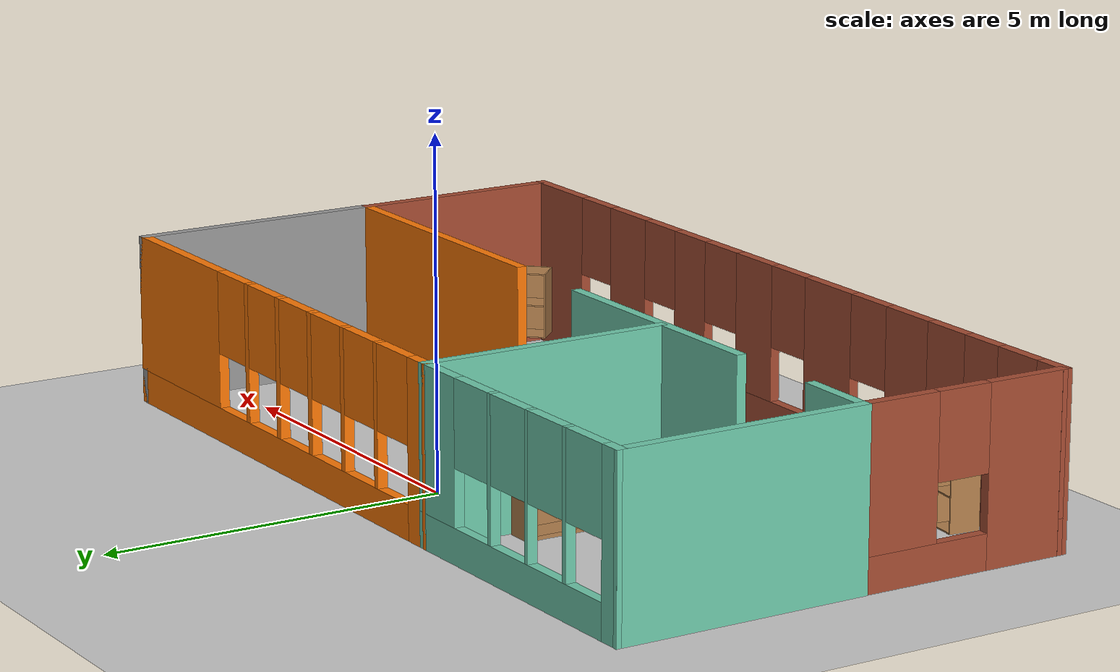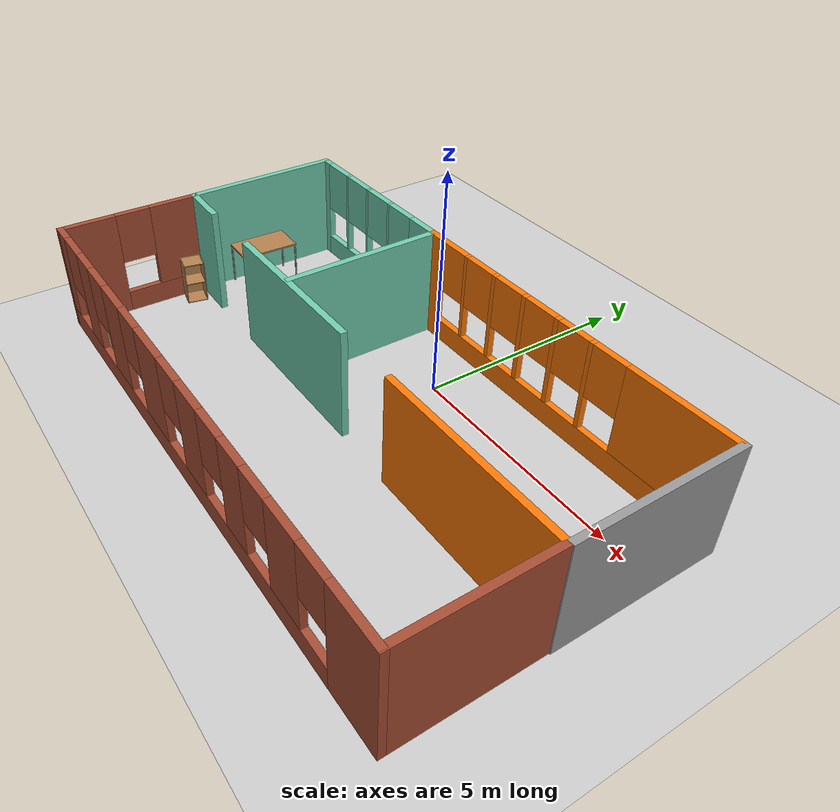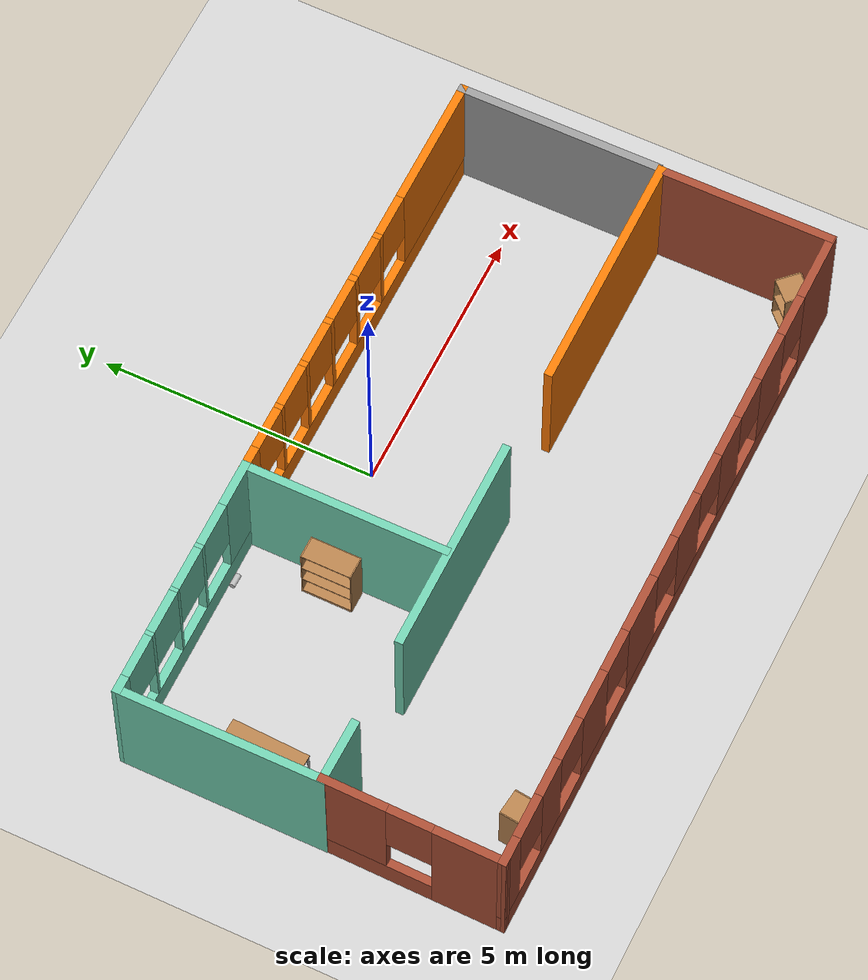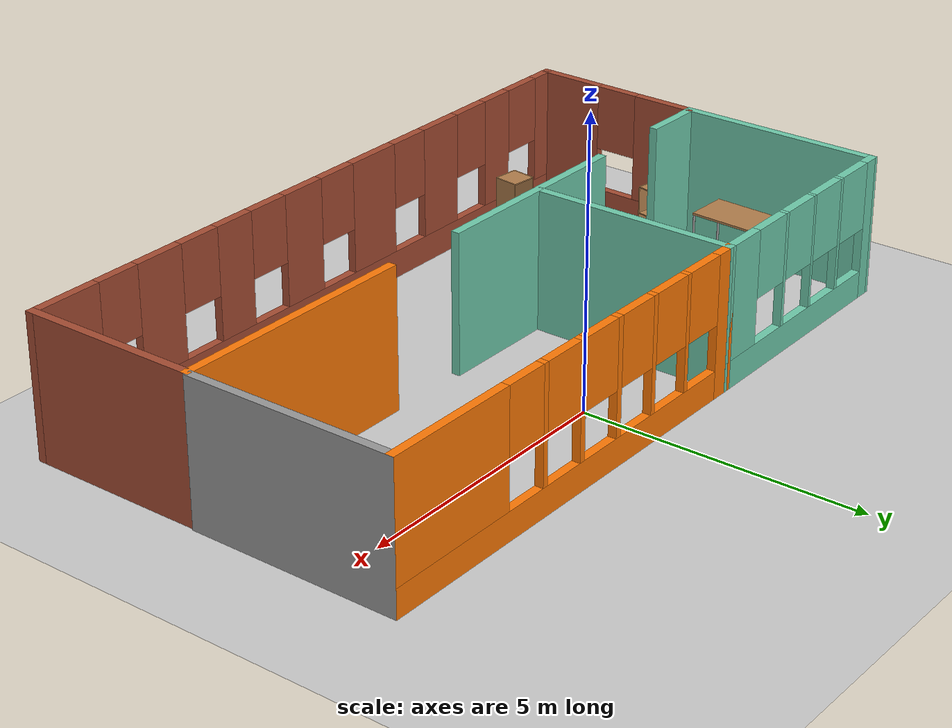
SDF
<sdf version="1.6">
 <world name="default">
  <light name="sun" type="directional">
   <pose>0 0 15 0 -0 0</pose>
   <diffuse>1 1 1 1</diffuse>
   <specular>0.1 0.1 0.1 1</specular>
   <attenuation>
    <range>1000</range>
    <constant>0.9</constant>
    <linear>0.01</linear>
    <quadratic>0.001</quadratic>
   </attenuation>
   <direction>-0.5 0.5 -1</direction>
  </light>
  <model name="ground_plane">
   <static>1</static>
   <link name="link">
    <collision name="collision">
     <geometry><plane><normal>0 0 1</normal><size>100 100</size></plane></geometry>
     <surface><friction><ode><mu>100</mu><mu2>50</mu2></ode></friction></surface>
    </collision>
    <visual name="visual">
     <transparency>1</transparency>
     <cast_shadows>0</cast_shadows>
     <geometry><plane><normal>0 0 1</normal><size>100 100</size></plane></geometry>
     <material>
      <script><uri>file://media/materials/scripts/gazebo.material</uri><name>Gazebo/Grey</name></script>
     </material>
    </visual>
   </link>
  </model>
  <gravity>0 0 -9.8</gravity>
  <magnetic_field>6e-06 2.3e-05 -4.2e-05</magnetic_field>
  <atmosphere type="adiabatic"/>
  <physics name="default_physics" default="0" type="ode">
   <max_step_size>0.001</max_step_size>
   <real_time_factor>1</real_time_factor>
   <real_time_update_rate>1000</real_time_update_rate>
  </physics>
  <scene><ambient>0.4 0.4 0.4 1</ambient><background>0.7 0.7 0.7 1</background><shadows>1</shadows></scene>
  <spherical_coordinates>
   <surface_model>EARTH_WGS84</surface_model>
   <latitude_deg>0</latitude_deg>
   <longitude_deg>0</longitude_deg>
   <elevation>0</elevation>
   <heading_deg>0</heading_deg>
  </spherical_coordinates>
  <model name="Custom_Gazebo_World">
   <pose>-0.16169 -2.10044 0 0 -0 0</pose>
   <link name="Wall_10">
    <pose>2.26288 3.39401 0 0 -0 0</pose>
    <visual name="Wall_10_Visual_0">
     <pose>-3.90026 0 1.25 0 -0 0</pose>
     <geometry><box><size>0.449477 0.15 2.5</size></box></geometry>
     <material>
      <script><uri>file://media/materials/scripts/gazebo.material</uri><name>Gazebo/Grey</name></script>
      <ambient>0.996078 0.47451 0.0196078 1</ambient>
     </material>
    </visual>
    <collision name="Wall_10_Collision_0">
     <geometry><box><size>0.449477 0.15 2.5</size></box></geometry>
     <pose>-3.90026 0 1.25 0 -0 0</pose>
    </collision>
    <visual name="Wall_10_Visual_1">
     <pose>0.224738 0 0.25 0 -0 0</pose>
     <geometry><box><size>7.80052 0.15 0.5</size></box></geometry>
     <material>
      <script><uri>file://media/materials/scripts/gazebo.material</uri><name>Gazebo/Grey</name></script>
      <ambient>0.996078 0.47451 0.0196078 1</ambient>
     </material>
    </visual>
    <collision name="Wall_10_Collision_1">
     <geometry><box><size>7.80052 0.15 0.5</size></box></geometry>
     <pose>0.224738 0 0.25 0 -0 0</pose>
    </collision>
    <visual name="Wall_10_Visual_2">
     <pose>-2.83026 0 1.5 0 -0 0</pose>
     <geometry><box><size>0.090528 0.15 2</size></box></geometry>
     <material>
      <script><uri>file://media/materials/scripts/gazebo.material</uri><name>Gazebo/Grey</name></script>
      <ambient>0.996078 0.47451 0.0196078 1</ambient>
     </material>
    </visual>
    <collision name="Wall_10_Collision_2">
     <geometry><box><size>0.090528 0.15 2</size></box></geometry>
     <pose>-2.83026 0 1.5 0 -0 0</pose>
    </collision>
    <visual name="Wall_10_Visual_3">
     <pose>-1.93395 0 1.5 0 -0 0</pose>
     <geometry><box><size>0.102094 0.15 2</size></box></geometry>
     <material>
      <script><uri>file://media/materials/scripts/gazebo.material</uri><name>Gazebo/Grey</name></script>
      <ambient>0.996078 0.47451 0.0196078 1</ambient>
     </material>
    </visual>
    <collision name="Wall_10_Collision_3">
     <geometry><box><size>0.102094 0.15 2</size></box></geometry>
     <pose>-1.93395 0 1.5 0 -0 0</pose>
    </collision>
    <visual name="Wall_10_Visual_4">
     <pose>-1.02607 0 1.5 0 -0 0</pose>
     <geometry><box><size>0.113659 0.15 2</size></box></geometry>
     <material>
      <script><uri>file://media/materials/scripts/gazebo.material</uri><name>Gazebo/Grey</name></script>
      <ambient>0.996078 0.47451 0.0196078 1</ambient>
     </material>
    </visual>
    <collision name="Wall_10_Collision_4">
     <geometry><box><size>0.113659 0.15 2</size></box></geometry>
     <pose>-1.02607 0 1.5 0 -0 0</pose>
    </collision>
    <visual name="Wall_10_Visual_5">
     <pose>-0.112412 0 1.5 0 -0 0</pose>
     <geometry><box><size>0.113659 0.15 2</size></box></geometry>
     <material>
      <script><uri>file://media/materials/scripts/gazebo.material</uri><name>Gazebo/Grey</name></script>
      <ambient>0.996078 0.47451 0.0196078 1</ambient>
     </material>
    </visual>
    <collision name="Wall_10_Collision_5">
     <geometry><box><size>0.113659 0.15 2</size></box></geometry>
     <pose>-0.112412 0 1.5 0 -0 0</pose>
    </collision>
    <visual name="Wall_10_Visual_6">
     <pose>0.795464 0 1.5 0 -0 0</pose>
     <geometry><box><size>0.102094 0.15 2</size></box></geometry>
     <material>
      <script><uri>file://media/materials/scripts/gazebo.material</uri><name>Gazebo/Grey</name></script>
      <ambient>0.996078 0.47451 0.0196078 1</ambient>
     </material>
    </visual>
    <collision name="Wall_10_Collision_6">
     <geometry><box><size>0.102094 0.15 2</size></box></geometry>
     <pose>0.795464 0 1.5 0 -0 0</pose>
    </collision>
    <visual name="Wall_10_Visual_7">
     <pose>2.88576 0 1.5 0 -0 0</pose>
     <geometry><box><size>2.47849 0.15 2</size></box></geometry>
     <material>
      <script><uri>file://media/materials/scripts/gazebo.material</uri><name>Gazebo/Grey</name></script>
      <ambient>0.996078 0.47451 0.0196078 1</ambient>
     </material>
    </visual>
    <collision name="Wall_10_Collision_7">
     <geometry><box><size>2.47849 0.15 2</size></box></geometry>
     <pose>2.88576 0 1.5 0 -0 0</pose>
    </collision>
    <visual name="Wall_10_Visual_8">
     <pose>-3.27552 0 1.9 0 -0 0</pose>
     <geometry><box><size>0.8 0.15 1.2</size></box></geometry>
     <material>
      <script><uri>file://media/materials/scripts/gazebo.material</uri><name>Gazebo/Grey</name></script>
      <ambient>0.996078 0.47451 0.0196078 1</ambient>
     </material>
    </visual>
    <collision name="Wall_10_Collision_8">
     <geometry><box><size>0.8 0.15 1.2</size></box></geometry>
     <pose>-3.27552 0 1.9 0 -0 0</pose>
    </collision>
    <visual name="Wall_10_Visual_9">
     <pose>-2.38499 0 1.9 0 -0 0</pose>
     <geometry><box><size>0.8 0.15 1.2</size></box></geometry>
     <material>
      <script><uri>file://media/materials/scripts/gazebo.material</uri><name>Gazebo/Grey</name></script>
      <ambient>0.996078 0.47451 0.0196078 1</ambient>
     </material>
    </visual>
    <collision name="Wall_10_Collision_9">
     <geometry><box><size>0.8 0.15 1.2</size></box></geometry>
     <pose>-2.38499 0 1.9 0 -0 0</pose>
    </collision>
    <visual name="Wall_10_Visual_10">
     <pose>-1.4829 0 1.9 0 -0 0</pose>
     <geometry><box><size>0.8 0.15 1.2</size></box></geometry>
     <material>
      <script><uri>file://media/materials/scripts/gazebo.material</uri><name>Gazebo/Grey</name></script>
      <ambient>0.996078 0.47451 0.0196078 1</ambient>
     </material>
    </visual>
    <collision name="Wall_10_Collision_10">
     <geometry><box><size>0.8 0.15 1.2</size></box></geometry>
     <pose>-1.4829 0 1.9 0 -0 0</pose>
    </collision>
    <visual name="Wall_10_Visual_11">
     <pose>-0.569242 0 1.9 0 -0 0</pose>
     <geometry><box><size>0.8 0.15 1.2</size></box></geometry>
     <material>
      <script><uri>file://media/materials/scripts/gazebo.material</uri><name>Gazebo/Grey</name></script>
      <ambient>0.996078 0.47451 0.0196078 1</ambient>
     </material>
    </visual>
    <collision name="Wall_10_Collision_11">
     <geometry><box><size>0.8 0.15 1.2</size></box></geometry>
     <pose>-0.569242 0 1.9 0 -0 0</pose>
    </collision>
    <visual name="Wall_10_Visual_12">
     <pose>0.344417 0 1.9 0 -0 0</pose>
     <geometry><box><size>0.8 0.15 1.2</size></box></geometry>
     <material>
      <script><uri>file://media/materials/scripts/gazebo.material</uri><name>Gazebo/Grey</name></script>
      <ambient>0.996078 0.47451 0.0196078 1</ambient>
     </material>
    </visual>
    <collision name="Wall_10_Collision_12">
     <geometry><box><size>0.8 0.15 1.2</size></box></geometry>
     <pose>0.344417 0 1.9 0 -0 0</pose>
    </collision>
    <visual name="Wall_10_Visual_13">
     <pose>1.24651 0 1.9 0 -0 0</pose>
     <geometry><box><size>0.8 0.15 1.2</size></box></geometry>
     <material>
      <script><uri>file://media/materials/scripts/gazebo.material</uri><name>Gazebo/Grey</name></script>
      <ambient>0.996078 0.47451 0.0196078 1</ambient>
     </material>
    </visual>
    <collision name="Wall_10_Collision_13">
     <geometry><box><size>0.8 0.15 1.2</size></box></geometry>
     <pose>1.24651 0 1.9 0 -0 0</pose>
    </collision>
   </link>
   <link name="Wall_11">
    <collision name="Wall_11_Collision">
     <geometry><box><size>3.75 0.15 2.5</size></box></geometry>
     <pose>0 0 1.25 0 -0 0</pose>
    </collision>
    <visual name="Wall_11_Visual">
     <pose>0 0 1.25 0 -0 0</pose>
     <geometry><box><size>3.75 0.15 2.5</size></box></geometry>
     <material>
      <script><uri>file://media/materials/scripts/gazebo.material</uri><name>Gazebo/Grey</name></script>
      <ambient>1 1 1 1</ambient>
     </material>
    </visual>
    <pose>6.31288 1.59401 0 0 0 -1.5708</pose>
   </link>
   <link name="Wall_14">
    <collision name="Wall_14_Collision">
     <geometry><box><size>4.5 0.15 2.5</size></box></geometry>
     <pose>0 0 1.25 0 -0 0</pose>
    </collision>
    <visual name="Wall_14_Visual">
     <pose>0 0 1.25 0 -0 0</pose>
     <geometry><box><size>4.5 0.15 2.5</size></box></geometry>
     <material>
      <script><uri>file://media/materials/scripts/gazebo.material</uri><name>Gazebo/Grey</name></script>
      <ambient>0.996078 0.47451 0.0196078 1</ambient>
     </material>
    </visual>
    <pose>4.11326 -0.293438 0 0 -0 0</pose>
   </link>
   <link name="Wall_16">
    <collision name="Wall_16_Collision">
     <geometry><box><size>3.25 0.15 2.5</size></box></geometry>
     <pose>0 0 1.25 0 -0 0</pose>
    </collision>
    <visual name="Wall_16_Visual">
     <pose>0 0 1.25 0 -0 0</pose>
     <geometry><box><size>3.25 0.15 2.5</size></box></geometry>
     <material>
      <script><uri>file://media/materials/scripts/gazebo.material</uri><name>Gazebo/Bricks</name></script>
      <ambient>0.996078 0.47451 0.0196078 1</ambient>
     </material>
    </visual>
    <pose>6.28826 -1.84344 0 0 0 -1.5708</pose>
   </link>
   <link name="Wall_17">
    <pose>-0.011741 -3.39344 0 0 -0 3.14159</pose>
    <visual name="Wall_17_Visual_0">
     <pose>-5.71433 0 1.25 0 -0 0</pose>
     <geometry><box><size>1.32135 0.15 2.5</size></box></geometry>
     <material>
      <script><uri>file://media/materials/scripts/gazebo.material</uri><name>Gazebo/Bricks</name></script>
      <ambient>0.996078 0.47451 0.0196078 1</ambient>
     </material>
    </visual>
    <collision name="Wall_17_Collision_0">
     <geometry><box><size>1.32135 0.15 2.5</size></box></geometry>
     <pose>-5.71433 0 1.25 0 -0 0</pose>
    </collision>
    <visual name="Wall_17_Visual_1">
     <pose>0.660673 0 0.25 0 -0 0</pose>
     <geometry><box><size>11.4287 0.15 0.5</size></box></geometry>
     <material>
      <script><uri>file://media/materials/scripts/gazebo.material</uri><name>Gazebo/Bricks</name></script>
      <ambient>0.996078 0.47451 0.0196078 1</ambient>
     </material>
    </visual>
    <collision name="Wall_17_Collision_1">
     <geometry><box><size>11.4287 0.15 0.5</size></box></geometry>
     <pose>0.660673 0 0.25 0 -0 0</pose>
    </collision>
    <visual name="Wall_17_Visual_2">
     <pose>-3.78386 0 1.5 0 -0 0</pose>
     <geometry><box><size>0.93959 0.15 2</size></box></geometry>
     <material>
      <script><uri>file://media/materials/scripts/gazebo.material</uri><name>Gazebo/Bricks</name></script>
      <ambient>0.996078 0.47451 0.0196078 1</ambient>
     </material>
    </visual>
    <collision name="Wall_17_Collision_2">
     <geometry><box><size>0.93959 0.15 2</size></box></geometry>
     <pose>-3.78386 0 1.5 0 -0 0</pose>
    </collision>
    <visual name="Wall_17_Visual_3">
     <pose>-2.12518 0 1.5 0 -0 0</pose>
     <geometry><box><size>0.777768 0.15 2</size></box></geometry>
     <material>
      <script><uri>file://media/materials/scripts/gazebo.material</uri><name>Gazebo/Bricks</name></script>
      <ambient>0.996078 0.47451 0.0196078 1</ambient>
     </material>
    </visual>
    <collision name="Wall_17_Collision_3">
     <geometry><box><size>0.777768 0.15 2</size></box></geometry>
     <pose>-2.12518 0 1.5 0 -0 0</pose>
    </collision>
    <visual name="Wall_17_Visual_4">
     <pose>-0.496843 0 1.5 0 -0 0</pose>
     <geometry><box><size>0.878907 0.15 2</size></box></geometry>
     <material>
      <script><uri>file://media/materials/scripts/gazebo.material</uri><name>Gazebo/Bricks</name></script>
      <ambient>0.996078 0.47451 0.0196078 1</ambient>
     </material>
    </visual>
    <collision name="Wall_17_Collision_4">
     <geometry><box><size>0.878907 0.15 2</size></box></geometry>
     <pose>-0.496843 0 1.5 0 -0 0</pose>
    </collision>
    <visual name="Wall_17_Visual_5">
     <pose>1.2832 0 1.5 0 -0 0</pose>
     <geometry><box><size>1.08118 0.15 2</size></box></geometry>
     <material>
      <script><uri>file://media/materials/scripts/gazebo.material</uri><name>Gazebo/Bricks</name></script>
      <ambient>0.996078 0.47451 0.0196078 1</ambient>
     </material>
    </visual>
    <collision name="Wall_17_Collision_5">
     <geometry><box><size>1.08118 0.15 2</size></box></geometry>
     <pose>1.2832 0 1.5 0 -0 0</pose>
    </collision>
    <visual name="Wall_17_Visual_6">
     <pose>3.08347 0 1.5 0 -0 0</pose>
     <geometry><box><size>0.919362 0.15 2</size></box></geometry>
     <material>
      <script><uri>file://media/materials/scripts/gazebo.material</uri><name>Gazebo/Bricks</name></script>
      <ambient>0.996078 0.47451 0.0196078 1</ambient>
     </material>
    </visual>
    <collision name="Wall_17_Collision_6">
     <geometry><box><size>0.919362 0.15 2</size></box></geometry>
     <pose>3.08347 0 1.5 0 -0 0</pose>
    </collision>
    <visual name="Wall_17_Visual_7">
     <pose>4.69158 0 1.5 0 -0 0</pose>
     <geometry><box><size>0.696857 0.15 2</size></box></geometry>
     <material>
      <script><uri>file://media/materials/scripts/gazebo.material</uri><name>Gazebo/Bricks</name></script>
      <ambient>0.996078 0.47451 0.0196078 1</ambient>
     </material>
    </visual>
    <collision name="Wall_17_Collision_7">
     <geometry><box><size>0.696857 0.15 2</size></box></geometry>
     <pose>4.69158 0 1.5 0 -0 0</pose>
    </collision>
    <visual name="Wall_17_Visual_8">
     <pose>6.10751 0 1.5 0 -0 0</pose>
     <geometry><box><size>0.534987 0.15 2</size></box></geometry>
     <material>
      <script><uri>file://media/materials/scripts/gazebo.material</uri><name>Gazebo/Bricks</name></script>
      <ambient>0.996078 0.47451 0.0196078 1</ambient>
     </material>
    </visual>
    <collision name="Wall_17_Collision_8">
     <geometry><box><size>0.534987 0.15 2</size></box></geometry>
     <pose>6.10751 0 1.5 0 -0 0</pose>
    </collision>
    <visual name="Wall_17_Visual_9">
     <pose>-4.65365 0 1.9 0 -0 0</pose>
     <geometry><box><size>0.8 0.15 1.2</size></box></geometry>
     <material>
      <script><uri>file://media/materials/scripts/gazebo.material</uri><name>Gazebo/Bricks</name></script>
      <ambient>0.996078 0.47451 0.0196078 1</ambient>
     </material>
    </visual>
    <collision name="Wall_17_Collision_9">
     <geometry><box><size>0.8 0.15 1.2</size></box></geometry>
     <pose>-4.65365 0 1.9 0 -0 0</pose>
    </collision>
    <visual name="Wall_17_Visual_10">
     <pose>-2.91406 0 1.9 0 -0 0</pose>
     <geometry><box><size>0.8 0.15 1.2</size></box></geometry>
     <material>
      <script><uri>file://media/materials/scripts/gazebo.material</uri><name>Gazebo/Bricks</name></script>
      <ambient>0.996078 0.47451 0.0196078 1</ambient>
     </material>
    </visual>
    <collision name="Wall_17_Collision_10">
     <geometry><box><size>0.8 0.15 1.2</size></box></geometry>
     <pose>-2.91406 0 1.9 0 -0 0</pose>
    </collision>
    <visual name="Wall_17_Visual_11">
     <pose>-1.3363 0 1.9 0 -0 0</pose>
     <geometry><box><size>0.8 0.15 1.2</size></box></geometry>
     <material>
      <script><uri>file://media/materials/scripts/gazebo.material</uri><name>Gazebo/Bricks</name></script>
      <ambient>0.996078 0.47451 0.0196078 1</ambient>
     </material>
    </visual>
    <collision name="Wall_17_Collision_11">
     <geometry><box><size>0.8 0.15 1.2</size></box></geometry>
     <pose>-1.3363 0 1.9 0 -0 0</pose>
    </collision>
    <visual name="Wall_17_Visual_12">
     <pose>0.34261 0 1.9 0 -0 0</pose>
     <geometry><box><size>0.8 0.15 1.2</size></box></geometry>
     <material>
      <script><uri>file://media/materials/scripts/gazebo.material</uri><name>Gazebo/Bricks</name></script>
      <ambient>0.996078 0.47451 0.0196078 1</ambient>
     </material>
    </visual>
    <collision name="Wall_17_Collision_12">
     <geometry><box><size>0.8 0.15 1.2</size></box></geometry>
     <pose>0.34261 0 1.9 0 -0 0</pose>
    </collision>
    <visual name="Wall_17_Visual_13">
     <pose>2.22379 0 1.9 0 -0 0</pose>
     <geometry><box><size>0.8 0.15 1.2</size></box></geometry>
     <material>
      <script><uri>file://media/materials/scripts/gazebo.material</uri><name>Gazebo/Bricks</name></script>
      <ambient>0.996078 0.47451 0.0196078 1</ambient>
     </material>
    </visual>
    <collision name="Wall_17_Collision_13">
     <geometry><box><size>0.8 0.15 1.2</size></box></geometry>
     <pose>2.22379 0 1.9 0 -0 0</pose>
    </collision>
    <visual name="Wall_17_Visual_14">
     <pose>3.94316 0 1.9 0 -0 0</pose>
     <geometry><box><size>0.8 0.15 1.2</size></box></geometry>
     <material>
      <script><uri>file://media/materials/scripts/gazebo.material</uri><name>Gazebo/Bricks</name></script>
      <ambient>0.996078 0.47451 0.0196078 1</ambient>
     </material>
    </visual>
    <collision name="Wall_17_Collision_14">
     <geometry><box><size>0.8 0.15 1.2</size></box></geometry>
     <pose>3.94316 0 1.9 0 -0 0</pose>
    </collision>
    <visual name="Wall_17_Visual_15">
     <pose>5.44001 0 1.9 0 -0 0</pose>
     <geometry><box><size>0.8 0.15 1.2</size></box></geometry>
     <material>
      <script><uri>file://media/materials/scripts/gazebo.material</uri><name>Gazebo/Bricks</name></script>
      <ambient>0.996078 0.47451 0.0196078 1</ambient>
     </material>
    </visual>
    <collision name="Wall_17_Collision_15">
     <geometry><box><size>0.8 0.15 1.2</size></box></geometry>
     <pose>5.44001 0 1.9 0 -0 0</pose>
    </collision>
   </link>
   <link name="Wall_18">
    <pose>-6.28769 -1.81656 0 0 -0 1.55555</pose>
    <visual name="Wall_18_Visual_0">
     <pose>-1.00436 0 1.25 0 -0 0</pose>
     <geometry><box><size>1.29542 0.15 2.5</size></box></geometry>
     <material>
      <script><uri>file://media/materials/scripts/gazebo.material</uri><name>Gazebo/Bricks</name></script>
      <ambient>0.435294 0.796078 0.67451 1</ambient>
     </material>
    </visual>
    <collision name="Wall_18_Collision_0">
     <geometry><box><size>1.29542 0.15 2.5</size></box></geometry>
     <pose>-1.00436 0 1.25 0 -0 0</pose>
    </collision>
    <visual name="Wall_18_Visual_1">
     <pose>0.647708 0 0.25 0 -0 0</pose>
     <geometry><box><size>2.00871 0.15 0.5</size></box></geometry>
     <material>
      <script><uri>file://media/materials/scripts/gazebo.material</uri><name>Gazebo/Bricks</name></script>
      <ambient>0.435294 0.796078 0.67451 1</ambient>
     </material>
    </visual>
    <collision name="Wall_18_Collision_1">
     <geometry><box><size>2.00871 0.15 0.5</size></box></geometry>
     <pose>0.647708 0 0.25 0 -0 0</pose>
    </collision>
    <visual name="Wall_18_Visual_2">
     <pose>1.04771 0 1.5 0 -0 0</pose>
     <geometry><box><size>1.20871 0.15 2</size></box></geometry>
     <material>
      <script><uri>file://media/materials/scripts/gazebo.material</uri><name>Gazebo/Bricks</name></script>
      <ambient>0.435294 0.796078 0.67451 1</ambient>
     </material>
    </visual>
    <collision name="Wall_18_Collision_2">
     <geometry><box><size>1.20871 0.15 2</size></box></geometry>
     <pose>1.04771 0 1.5 0 -0 0</pose>
    </collision>
    <visual name="Wall_18_Visual_3">
     <pose>0.043352 0 1.9 0 -0 0</pose>
     <geometry><box><size>0.8 0.15 1.2</size></box></geometry>
     <material>
      <script><uri>file://media/materials/scripts/gazebo.material</uri><name>Gazebo/Bricks</name></script>
      <ambient>0.435294 0.796078 0.67451 1</ambient>
     </material>
    </visual>
    <collision name="Wall_18_Collision_3">
     <geometry><box><size>0.8 0.15 1.2</size></box></geometry>
     <pose>0.043352 0 1.9 0 -0 0</pose>
    </collision>
   </link>
   <link name="Wall_22">
    <pose>-4.03041 3.37717 0 0 -0 0.007508</pose>
    <visual name="Wall_22_Visual_0">
     <pose>-2.15142 0 1.25 0 -0 0</pose>
     <geometry><box><size>0.333858 0.15 2.5</size></box></geometry>
     <material>
      <script><uri>file://media/materials/scripts/gazebo.material</uri><name>Gazebo/Grey</name></script>
      <ambient>0.435294 0.796078 0.67451 1</ambient>
     </material>
    </visual>
    <collision name="Wall_22_Collision_0">
     <geometry><box><size>0.333858 0.15 2.5</size></box></geometry>
     <pose>-2.15142 0 1.25 0 -0 0</pose>
    </collision>
    <visual name="Wall_22_Visual_1">
     <pose>0.166929 0 0.25 0 -0 0</pose>
     <geometry><box><size>4.30284 0.15 0.5</size></box></geometry>
     <material>
      <script><uri>file://media/materials/scripts/gazebo.material</uri><name>Gazebo/Grey</name></script>
      <ambient>0.435294 0.796078 0.67451 1</ambient>
     </material>
    </visual>
    <collision name="Wall_22_Collision_1">
     <geometry><box><size>4.30284 0.15 0.5</size></box></geometry>
     <pose>0.166929 0 0.25 0 -0 0</pose>
    </collision>
    <visual name="Wall_22_Visual_2">
     <pose>-1.14559 0 1.5 0 -0 0</pose>
     <geometry><box><size>0.077809 0.15 2</size></box></geometry>
     <material>
      <script><uri>file://media/materials/scripts/gazebo.material</uri><name>Gazebo/Grey</name></script>
      <ambient>0.435294 0.796078 0.67451 1</ambient>
     </material>
    </visual>
    <collision name="Wall_22_Collision_2">
     <geometry><box><size>0.077809 0.15 2</size></box></geometry>
     <pose>-1.14559 0 1.5 0 -0 0</pose>
    </collision>
    <visual name="Wall_22_Visual_3">
     <pose>-0.272648 0 1.5 0 -0 0</pose>
     <geometry><box><size>0.068068 0.15 2</size></box></geometry>
     <material>
      <script><uri>file://media/materials/scripts/gazebo.material</uri><name>Gazebo/Grey</name></script>
      <ambient>0.435294 0.796078 0.67451 1</ambient>
     </material>
    </visual>
    <collision name="Wall_22_Collision_3">
     <geometry><box><size>0.068068 0.15 2</size></box></geometry>
     <pose>-0.272648 0 1.5 0 -0 0</pose>
    </collision>
    <visual name="Wall_22_Visual_4">
     <pose>0.601202 0 1.5 0 -0 0</pose>
     <geometry><box><size>0.079633 0.15 2</size></box></geometry>
     <material>
      <script><uri>file://media/materials/scripts/gazebo.material</uri><name>Gazebo/Grey</name></script>
      <ambient>0.435294 0.796078 0.67451 1</ambient>
     </material>
    </visual>
    <collision name="Wall_22_Collision_4">
     <geometry><box><size>0.079633 0.15 2</size></box></geometry>
     <pose>0.601202 0 1.5 0 -0 0</pose>
    </collision>
    <visual name="Wall_22_Visual_5">
     <pose>1.87968 0 1.5 0 -0 0</pose>
     <geometry><box><size>0.877331 0.15 2</size></box></geometry>
     <material>
      <script><uri>file://media/materials/scripts/gazebo.material</uri><name>Gazebo/Grey</name></script>
      <ambient>0.435294 0.796078 0.67451 1</ambient>
     </material>
    </visual>
    <collision name="Wall_22_Collision_5">
     <geometry><box><size>0.877331 0.15 2</size></box></geometry>
     <pose>1.87968 0 1.5 0 -0 0</pose>
    </collision>
    <visual name="Wall_22_Visual_6">
     <pose>-1.58449 0 1.9 0 -0 0</pose>
     <geometry><box><size>0.8 0.15 1.2</size></box></geometry>
     <material>
      <script><uri>file://media/materials/scripts/gazebo.material</uri><name>Gazebo/Grey</name></script>
      <ambient>0.435294 0.796078 0.67451 1</ambient>
     </material>
    </visual>
    <collision name="Wall_22_Collision_6">
     <geometry><box><size>0.8 0.15 1.2</size></box></geometry>
     <pose>-1.58449 0 1.9 0 -0 0</pose>
    </collision>
    <visual name="Wall_22_Visual_7">
     <pose>-0.706683 0 1.9 0 -0 0</pose>
     <geometry><box><size>0.8 0.15 1.2</size></box></geometry>
     <material>
      <script><uri>file://media/materials/scripts/gazebo.material</uri><name>Gazebo/Grey</name></script>
      <ambient>0.435294 0.796078 0.67451 1</ambient>
     </material>
    </visual>
    <collision name="Wall_22_Collision_7">
     <geometry><box><size>0.8 0.15 1.2</size></box></geometry>
     <pose>-0.706683 0 1.9 0 -0 0</pose>
    </collision>
    <visual name="Wall_22_Visual_8">
     <pose>0.161386 0 1.9 0 -0 0</pose>
     <geometry><box><size>0.8 0.15 1.2</size></box></geometry>
     <material>
      <script><uri>file://media/materials/scripts/gazebo.material</uri><name>Gazebo/Grey</name></script>
      <ambient>0.435294 0.796078 0.67451 1</ambient>
     </material>
    </visual>
    <collision name="Wall_22_Collision_8">
     <geometry><box><size>0.8 0.15 1.2</size></box></geometry>
     <pose>0.161386 0 1.9 0 -0 0</pose>
    </collision>
    <visual name="Wall_22_Visual_9">
     <pose>1.04102 0 1.9 0 -0 0</pose>
     <geometry><box><size>0.8 0.15 1.2</size></box></geometry>
     <material>
      <script><uri>file://media/materials/scripts/gazebo.material</uri><name>Gazebo/Grey</name></script>
      <ambient>0.435294 0.796078 0.67451 1</ambient>
     </material>
    </visual>
    <collision name="Wall_22_Collision_9">
     <geometry><box><size>0.8 0.15 1.2</size></box></geometry>
     <pose>1.04102 0 1.9 0 -0 0</pose>
    </collision>
   </link>
   <link name="Wall_3">
    <collision name="Wall_3_Collision">
     <geometry><box><size>3.75 0.15 2.5</size></box></geometry>
     <pose>0 0 1.25 0 -0 0</pose>
    </collision>
    <visual name="Wall_3_Visual">
     <pose>0 0 1.25 0 -0 0</pose>
     <geometry><box><size>3.75 0.15 2.5</size></box></geometry>
     <material>
      <script><uri>file://media/materials/scripts/gazebo.material</uri><name>Gazebo/Grey</name></script>
      <ambient>0.435294 0.796078 0.67451 1</ambient>
     </material>
    </visual>
    <pose>-6.2737 1.56032 0 0 0 -1.5708</pose>
   </link>
   <link name="Wall_4">
    <collision name="Wall_4_Collision">
     <geometry><box><size>1.2142 0.15 2.5</size></box></geometry>
     <pose>0 0 1.25 0 -0 0</pose>
    </collision>
    <visual name="Wall_4_Visual">
     <pose>0 0 1.25 0 -0 0</pose>
     <geometry><box><size>1.2142 0.15 2.5</size></box></geometry>
     <material>
      <script><uri>file://media/materials/scripts/gazebo.material</uri><name>Gazebo/Grey</name></script>
      <ambient>0.435294 0.796078 0.67451 1</ambient>
     </material>
    </visual>
    <pose>-5.7316 -0.24759 0 0 0 -0.014875</pose>
   </link>
   <link name="Wall_6">
    <collision name="Wall_6_Collision">
     <geometry><box><size>4 0.15 2.5</size></box></geometry>
     <pose>0 0 1.25 0 -0 0</pose>
    </collision>
    <visual name="Wall_6_Visual">
     <pose>0 0 1.25 0 -0 0</pose>
     <geometry><box><size>4 0.15 2.5</size></box></geometry>
     <material>
      <script><uri>file://media/materials/scripts/gazebo.material</uri><name>Gazebo/Grey</name></script>
      <ambient>0.435294 0.796078 0.67451 1</ambient>
     </material>
    </visual>
    <pose>-1.61113 -0.258458 0 0 -0 0</pose>
   </link>
   <link name="Wall_9">
    <collision name="Wall_9_Collision">
     <geometry><box><size>3.75 0.15 2.5</size></box></geometry>
     <pose>0 0 1.25 0 -0 0</pose>
    </collision>
    <visual name="Wall_9_Visual">
     <pose>0 0 1.25 0 -0 0</pose>
     <geometry><box><size>3.75 0.15 2.5</size></box></geometry>
     <material>
      <script><uri>file://media/materials/scripts/gazebo.material</uri><name>Gazebo/Grey</name></script>
      <ambient>0.435294 0.796078 0.67451 1</ambient>
     </material>
    </visual>
    <pose>-1.78712 1.59401 0 0 -0 1.5708</pose>
   </link>
   <static>1</static>
  </model>
  <model name="bookshelf">
   <static>1</static>
   <link name="link">
    <inertial><mass>1</mass></inertial>
    <collision name="back">
     <pose>0 0.005 0.6 0 -0 0</pose>
     <geometry><box><size>0.9 0.01 1.2</size></box></geometry>
    </collision>
    <visual name="visual1">
     <pose>0 0.005 0.6 0 -0 0</pose>
     <geometry><box><size>0.9 0.01 1.2</size></box></geometry>
     <material>
      <script><uri>file://media/materials/scripts/gazebo.material</uri><name>Gazebo/Wood</name></script>
     </material>
    </visual>
    <collision name="left_side">
     <pose>0.45 -0.195 0.6 0 -0 0</pose>
     <geometry><box><size>0.02 0.4 1.2</size></box></geometry>
    </collision>
    <visual name="visual2">
     <pose>0.45 -0.195 0.6 0 -0 0</pose>
     <geometry><box><size>0.02 0.4 1.2</size></box></geometry>
     <material>
      <script><uri>file://media/materials/scripts/gazebo.material</uri><name>Gazebo/Wood</name></script>
     </material>
    </visual>
    <collision name="right_side">
     <pose>-0.45 -0.195 0.6 0 -0 0</pose>
     <geometry><box><size>0.02 0.4 1.2</size></box></geometry>
    </collision>
    <visual name="visual3">
     <pose>-0.45 -0.195 0.6 0 -0 0</pose>
     <geometry><box><size>0.02 0.4 1.2</size></box></geometry>
     <material>
      <script><uri>file://media/materials/scripts/gazebo.material</uri><name>Gazebo/Wood</name></script>
     </material>
    </visual>
    <collision name="bottom">
     <pose>0 -0.195 0.03 0 -0 0</pose>
     <geometry><box><size>0.88 0.4 0.06</size></box></geometry>
    </collision>
    <visual name="visual4">
     <pose>0 -0.195 0.03 0 -0 0</pose>
     <geometry><box><size>0.88 0.4 0.06</size></box></geometry>
     <material>
      <script><uri>file://media/materials/scripts/gazebo.material</uri><name>Gazebo/Wood</name></script>
     </material>
    </visual>
    <collision name="top">
     <pose>0 -0.195 1.19 0 -0 0</pose>
     <geometry><box><size>0.88 0.4 0.02</size></box></geometry>
    </collision>
    <visual name="visual5">
     <pose>0 -0.195 1.19 0 -0 0</pose>
     <geometry><box><size>0.88 0.4 0.02</size></box></geometry>
     <material>
      <script><uri>file://media/materials/scripts/gazebo.material</uri><name>Gazebo/Wood</name></script>
     </material>
    </visual>
    <collision name="low_shelf">
     <pose>0 -0.195 0.43 0 -0 0</pose>
     <geometry><box><size>0.88 0.4 0.02</size></box></geometry>
    </collision>
    <visual name="visual6">
     <pose>0 -0.195 0.43 0 -0 0</pose>
     <geometry><box><size>0.88 0.4 0.02</size></box></geometry>
     <material>
      <script><uri>file://media/materials/scripts/gazebo.material</uri><name>Gazebo/Wood</name></script>
     </material>
    </visual>
    <collision name="high_shelf">
     <pose>0 -0.195 0.8 0 -0 0</pose>
     <geometry><box><size>0.88 0.4 0.02</size></box></geometry>
    </collision>
    <visual name="visual7">
     <pose>0 -0.195 0.8 0 -0 0</pose>
     <geometry><box><size>0.88 0.4 0.02</size></box></geometry>
     <material>
      <script><uri>file://media/materials/scripts/gazebo.material</uri><name>Gazebo/Wood</name></script>
     </material>
    </visual>
   </link>
   <pose>-2.04938 -0.377303 0 0 0 -1.57475</pose>
  </model>
  <model name="beer">
   <link name="link">
    <pose>0 0 0.115 0 -0 0</pose>
    <inertial>
     <mass>0.39</mass>
     <inertia><ixx>0.00058</ixx><ixy>0</ixy><ixz>0</ixz><iyy>0.00058</iyy><iyz>0</iyz><izz>0.00019</izz></inertia>
    </inertial>
    <collision name="collision">
     <geometry><cylinder><radius>0.055</radius><length>0.23</length></cylinder></geometry>
    </collision>
    <visual name="visual">
     <geometry><cylinder><radius>0.055</radius><length>0.23</length></cylinder></geometry>
     <material>
      <script>
       <uri>model://beer/materials/scripts</uri>
       <uri>model://beer/materials/textures</uri>
       <name>Beer/Diffuse</name>
      </script>
     </material>
    </visual>
   </link>
   <pose>-2.66073 1.14575 0.054918 1.57032 0.728999 -1.57831</pose>
  </model>
  <model name="cabinet">
   <static>1</static>
   <link name="cabinet_bottom_plate">
    <inertial>
     <pose>0 0 -1 0 -0 0</pose>
     <inertia><ixx>2.05</ixx><ixy>0</ixy><ixz>0</ixz><iyy>2.05</iyy><iyz>0</iyz><izz>2.05</izz></inertia>
     <mass>25</mass>
    </inertial>
    <collision name="cabinet_bottom_plate_geom">
     <pose>0 0 0.01 0 -0 0</pose>
     <geometry><box><size>0.45 0.45 0.02</size></box></geometry>
    </collision>
    <visual name="cabinet_bottom_plate_geom_visual">
     <pose>0 0 0.01 0 -0 0</pose>
     <geometry><box><size>0.45 0.45 0.02</size></box></geometry>
     <material>
      <script><uri>file://media/materials/scripts/gazebo.material</uri><name>Gazebo/Wood</name></script>
     </material>
    </visual>
    <collision name="cabinet_bottom_plate_geom_cabinet_back_plate">
     <pose>0.235 0 0.51 0 -0 0</pose>
     <geometry><box><size>0.02 0.45 1.02</size></box></geometry>
    </collision>
    <visual name="cabinet_bottom_plate_geom_cabinet_back_plate_visual">
     <pose>0.235 0 0.51 0 -0 0</pose>
     <geometry><box><size>0.02 0.45 1.02</size></box></geometry>
     <material>
      <script><uri>file://media/materials/scripts/gazebo.material</uri><name>Gazebo/Wood</name></script>
     </material>
    </visual>
    <collision name="cabinet_bottom_plate_geom_cabinet_left_plate">
     <pose>0 0.235 0.51 0 -0 0</pose>
     <geometry><box><size>0.45 0.02 1.02</size></box></geometry>
    </collision>
    <visual name="cabinet_bottom_plate_geom_cabinet_left_plate_visual">
     <pose>0 0.235 0.51 0 -0 0</pose>
     <geometry><box><size>0.45 0.02 1.02</size></box></geometry>
     <material>
      <script><uri>file://media/materials/scripts/gazebo.material</uri><name>Gazebo/Wood</name></script>
     </material>
    </visual>
    <collision name="cabinet_bottom_plate_geom_cabinet_middle_plate">
     <pose>0 0 0.51 0 -0 0</pose>
     <geometry><box><size>0.45 0.45 0.02</size></box></geometry>
    </collision>
    <visual name="cabinet_bottom_plate_geom_cabinet_middle_plate_visual">
     <pose>0 0 0.51 0 -0 0</pose>
     <geometry><box><size>0.45 0.45 0.02</size></box></geometry>
     <material>
      <script><uri>file://media/materials/scripts/gazebo.material</uri><name>Gazebo/Wood</name></script>
     </material>
    </visual>
    <collision name="cabinet_bottom_plate_geom_cabinet_right_plate">
     <pose>0 -0.235 0.51 0 -0 0</pose>
     <geometry><box><size>0.45 0.02 1.02</size></box></geometry>
    </collision>
    <visual name="cabinet_bottom_plate_geom_cabinet_right_plate_visual">
     <pose>0 -0.235 0.51 0 -0 0</pose>
     <geometry><box><size>0.45 0.02 1.02</size></box></geometry>
     <material>
      <script><uri>file://media/materials/scripts/gazebo.material</uri><name>Gazebo/Wood</name></script>
     </material>
    </visual>
    <collision name="cabinet_bottom_plate_geom_cabinet_top_plate">
     <pose>0 0 1.01 0 -0 0</pose>
     <geometry><box><size>0.45 0.45 0.02</size></box></geometry>
    </collision>
    <visual name="cabinet_bottom_plate_geom_cabinet_top_plate_visual">
     <pose>0 0 1.01 0 -0 0</pose>
     <geometry><box><size>0.45 0.45 0.02</size></box></geometry>
     <material>
      <script><uri>file://media/materials/scripts/gazebo.material</uri><name>Gazebo/Wood</name></script>
     </material>
    </visual>
   </link>
   <pose>-6.09389 -2.74577 0 0 -0 2.93817</pose>
  </model>
  <model name="cabinet_0">
   <static>1</static>
   <link name="cabinet_bottom_plate">
    <inertial>
     <pose>0 0 -1 0 -0 0</pose>
     <inertia><ixx>2.05</ixx><ixy>0</ixy><ixz>0</ixz><iyy>2.05</iyy><iyz>0</iyz><izz>2.05</izz></inertia>
     <mass>25</mass>
    </inertial>
    <collision name="cabinet_bottom_plate_geom">
     <pose>0 0 0.01 0 -0 0</pose>
     <geometry><box><size>0.45 0.45 0.02</size></box></geometry>
    </collision>
    <visual name="cabinet_bottom_plate_geom_visual">
     <pose>0 0 0.01 0 -0 0</pose>
     <geometry><box><size>0.45 0.45 0.02</size></box></geometry>
     <material>
      <script><uri>file://media/materials/scripts/gazebo.material</uri><name>Gazebo/Wood</name></script>
     </material>
    </visual>
    <collision name="cabinet_bottom_plate_geom_cabinet_back_plate">
     <pose>0.235 0 0.51 0 -0 0</pose>
     <geometry><box><size>0.02 0.45 1.02</size></box></geometry>
    </collision>
    <visual name="cabinet_bottom_plate_geom_cabinet_back_plate_visual">
     <pose>0.235 0 0.51 0 -0 0</pose>
     <geometry><box><size>0.02 0.45 1.02</size></box></geometry>
     <material>
      <script><uri>file://media/materials/scripts/gazebo.material</uri><name>Gazebo/Wood</name></script>
     </material>
    </visual>
    <collision name="cabinet_bottom_plate_geom_cabinet_left_plate">
     <pose>0 0.235 0.51 0 -0 0</pose>
     <geometry><box><size>0.45 0.02 1.02</size></box></geometry>
    </collision>
    <visual name="cabinet_bottom_plate_geom_cabinet_left_plate_visual">
     <pose>0 0.235 0.51 0 -0 0</pose>
     <geometry><box><size>0.45 0.02 1.02</size></box></geometry>
     <material>
      <script><uri>file://media/materials/scripts/gazebo.material</uri><name>Gazebo/Wood</name></script>
     </material>
    </visual>
    <collision name="cabinet_bottom_plate_geom_cabinet_middle_plate">
     <pose>0 0 0.51 0 -0 0</pose>
     <geometry><box><size>0.45 0.45 0.02</size></box></geometry>
    </collision>
    <visual name="cabinet_bottom_plate_geom_cabinet_middle_plate_visual">
     <pose>0 0 0.51 0 -0 0</pose>
     <geometry><box><size>0.45 0.45 0.02</size></box></geometry>
     <material>
      <script><uri>file://media/materials/scripts/gazebo.material</uri><name>Gazebo/Wood</name></script>
     </material>
    </visual>
    <collision name="cabinet_bottom_plate_geom_cabinet_right_plate">
     <pose>0 -0.235 0.51 0 -0 0</pose>
     <geometry><box><size>0.45 0.02 1.02</size></box></geometry>
    </collision>
    <visual name="cabinet_bottom_plate_geom_cabinet_right_plate_visual">
     <pose>0 -0.235 0.51 0 -0 0</pose>
     <geometry><box><size>0.45 0.02 1.02</size></box></geometry>
     <material>
      <script><uri>file://media/materials/scripts/gazebo.material</uri><name>Gazebo/Wood</name></script>
     </material>
    </visual>
    <collision name="cabinet_bottom_plate_geom_cabinet_top_plate">
     <pose>0 0 1.01 0 -0 0</pose>
     <geometry><box><size>0.45 0.45 0.02</size></box></geometry>
    </collision>
    <visual name="cabinet_bottom_plate_geom_cabinet_top_plate_visual">
     <pose>0 0 1.01 0 -0 0</pose>
     <geometry><box><size>0.45 0.45 0.02</size></box></geometry>
     <material>
      <script><uri>file://media/materials/scripts/gazebo.material</uri><name>Gazebo/Wood</name></script>
     </material>
    </visual>
   </link>
   <pose>-4.90162 -5.03599 0 0 0 -1.68681</pose>
  </model>
  <model name="cabinet_1">
   <static>1</static>
   <link name="cabinet_bottom_plate">
    <inertial>
     <pose>0 0 -1 0 -0 0</pose>
     <inertia><ixx>2.05</ixx><ixy>0</ixy><ixz>0</ixz><iyy>2.05</iyy><iyz>0</iyz><izz>2.05</izz></inertia>
     <mass>25</mass>
    </inertial>
    <collision name="cabinet_bottom_plate_geom">
     <pose>0 0 0.01 0 -0 0</pose>
     <geometry><box><size>0.45 0.45 0.02</size></box></geometry>
    </collision>
    <visual name="cabinet_bottom_plate_geom_visual">
     <pose>0 0 0.01 0 -0 0</pose>
     <geometry><box><size>0.45 0.45 0.02</size></box></geometry>
     <material>
      <script><uri>file://media/materials/scripts/gazebo.material</uri><name>Gazebo/Wood</name></script>
     </material>
    </visual>
    <collision name="cabinet_bottom_plate_geom_cabinet_back_plate">
     <pose>0.235 0 0.51 0 -0 0</pose>
     <geometry><box><size>0.02 0.45 1.02</size></box></geometry>
    </collision>
    <visual name="cabinet_bottom_plate_geom_cabinet_back_plate_visual">
     <pose>0.235 0 0.51 0 -0 0</pose>
     <geometry><box><size>0.02 0.45 1.02</size></box></geometry>
     <material>
      <script><uri>file://media/materials/scripts/gazebo.material</uri><name>Gazebo/Wood</name></script>
     </material>
    </visual>
    <collision name="cabinet_bottom_plate_geom_cabinet_left_plate">
     <pose>0 0.235 0.51 0 -0 0</pose>
     <geometry><box><size>0.45 0.02 1.02</size></box></geometry>
    </collision>
    <visual name="cabinet_bottom_plate_geom_cabinet_left_plate_visual">
     <pose>0 0.235 0.51 0 -0 0</pose>
     <geometry><box><size>0.45 0.02 1.02</size></box></geometry>
     <material>
      <script><uri>file://media/materials/scripts/gazebo.material</uri><name>Gazebo/Wood</name></script>
     </material>
    </visual>
    <collision name="cabinet_bottom_plate_geom_cabinet_middle_plate">
     <pose>0 0 0.51 0 -0 0</pose>
     <geometry><box><size>0.45 0.45 0.02</size></box></geometry>
    </collision>
    <visual name="cabinet_bottom_plate_geom_cabinet_middle_plate_visual">
     <pose>0 0 0.51 0 -0 0</pose>
     <geometry><box><size>0.45 0.45 0.02</size></box></geometry>
     <material>
      <script><uri>file://media/materials/scripts/gazebo.material</uri><name>Gazebo/Wood</name></script>
     </material>
    </visual>
    <collision name="cabinet_bottom_plate_geom_cabinet_right_plate">
     <pose>0 -0.235 0.51 0 -0 0</pose>
     <geometry><box><size>0.45 0.02 1.02</size></box></geometry>
    </collision>
    <visual name="cabinet_bottom_plate_geom_cabinet_right_plate_visual">
     <pose>0 -0.235 0.51 0 -0 0</pose>
     <geometry><box><size>0.45 0.02 1.02</size></box></geometry>
     <material>
      <script><uri>file://media/materials/scripts/gazebo.material</uri><name>Gazebo/Wood</name></script>
     </material>
    </visual>
    <collision name="cabinet_bottom_plate_geom_cabinet_top_plate">
     <pose>0 0 1.01 0 -0 0</pose>
     <geometry><box><size>0.45 0.45 0.02</size></box></geometry>
    </collision>
    <visual name="cabinet_bottom_plate_geom_cabinet_top_plate_visual">
     <pose>0 0 1.01 0 -0 0</pose>
     <geometry><box><size>0.45 0.45 0.02</size></box></geometry>
     <material>
      <script><uri>file://media/materials/scripts/gazebo.material</uri><name>Gazebo/Wood</name></script>
     </material>
    </visual>
   </link>
   <pose>5.71505 -5.06494 0.219223 0 0 -0.789555</pose>
  </model>
  <model name="table">
   <static>0</static>
   <link name="link">
    <collision name="surface">
     <pose>0 0 1 0 -0 0</pose>
     <geometry><box><size>1.5 0.8 0.03</size></box></geometry>
     <surface><friction><ode><mu>0.6</mu><mu2>0.6</mu2></ode></friction></surface>
    </collision>
    <visual name="visual1">
     <pose>0 0 1 0 -0 0</pose>
     <geometry><box><size>1.4 0.8 0.04</size></box></geometry>
     <material>
      <script><uri>file://media/materials/scripts/gazebo.material</uri><name>Gazebo/Wood</name></script>
     </material>
    </visual>
    <collision name="front_left_leg">
     <pose>0.68 0.38 0.5 0 -0 0</pose>
     <geometry><cylinder><radius>0.02</radius><length>1</length></cylinder></geometry>
    </collision>
    <visual name="front_left_leg">
     <pose>0.68 0.38 0.5 0 -0 0</pose>
     <geometry><cylinder><radius>0.02</radius><length>1</length></cylinder></geometry>
     <material>
      <script><uri>file://media/materials/scripts/gazebo.material</uri><name>Gazebo/Grey</name></script>
     </material>
    </visual>
    <collision name="front_right_leg">
     <pose>0.68 -0.38 0.5 0 -0 0</pose>
     <geometry><cylinder><radius>0.02</radius><length>1</length></cylinder></geometry>
    </collision>
    <visual name="front_right_leg">
     <pose>0.68 -0.38 0.5 0 -0 0</pose>
     <geometry><cylinder><radius>0.02</radius><length>1</length></cylinder></geometry>
     <material>
      <script><uri>file://media/materials/scripts/gazebo.material</uri><name>Gazebo/Grey</name></script>
     </material>
    </visual>
    <collision name="back_right_leg">
     <pose>-0.68 -0.38 0.5 0 -0 0</pose>
     <geometry><cylinder><radius>0.02</radius><length>1</length></cylinder></geometry>
    </collision>
    <visual name="back_right_leg">
     <pose>-0.68 -0.38 0.5 0 -0 0</pose>
     <geometry><cylinder><radius>0.02</radius><length>1</length></cylinder></geometry>
     <material>
      <script><uri>file://media/materials/scripts/gazebo.material</uri><name>Gazebo/Grey</name></script>
     </material>
    </visual>
    <collision name="back_left_leg">
     <pose>-0.68 0.38 0.5 0 -0 0</pose>
     <geometry><cylinder><radius>0.02</radius><length>1</length></cylinder></geometry>
    </collision>
    <visual name="back_left_leg">
     <pose>-0.68 0.38 0.5 0 -0 0</pose>
     <geometry><cylinder><radius>0.02</radius><length>1</length></cylinder></geometry>
     <material>
      <script><uri>file://media/materials/scripts/gazebo.material</uri><name>Gazebo/Grey</name></script>
     </material>
    </visual>
    <inertial>
     <inertia><ixx>1</ixx><ixy>0</ixy><ixz>0</ixz><iyy>1</iyy><iyz>0</iyz><izz>1</izz></inertia>
     <mass>1</mass>
    </inertial>
   </link>
   <pose>-5.89891 -0.915953 -1e-06 0 1e-06 -1.60994</pose>
  </model>
 </world>
</sdf>
